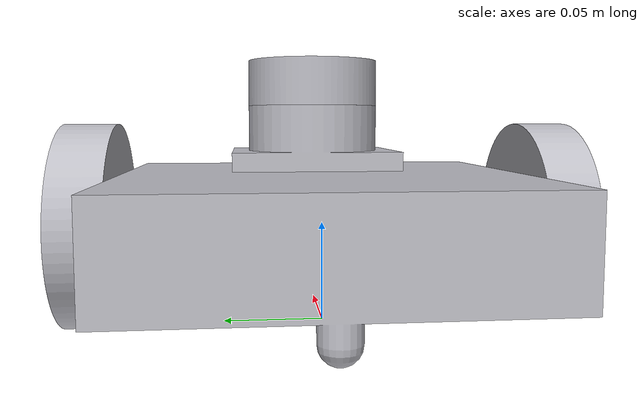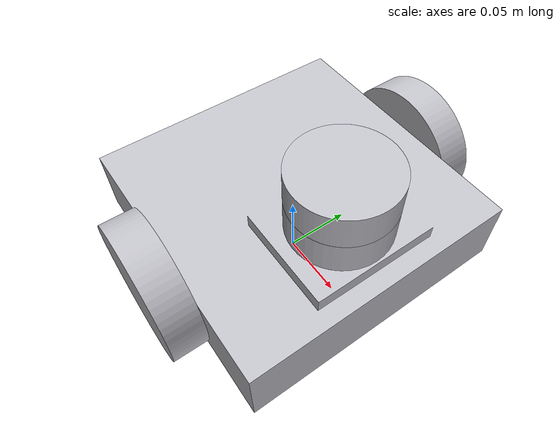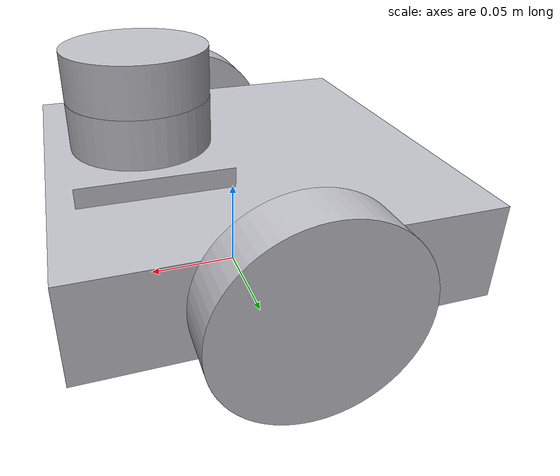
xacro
<?xml version="1.0" ?>
<robot name="myrobot" xmlns:xacro="http://www.ros.org/wiki/xacro">

<xacro:include filename="$(find myrobot_description)/urdf/materials.xacro" />
<xacro:include filename="$(find myrobot_description)/urdf/myrobot.trans" />
<xacro:include filename="$(find myrobot_description)/urdf/myrobot.gazebo" />
<link name="base_link">
  <inertial>
    <origin rpy="0 0 0" xyz="0.0038679374402001226 3.5649192997169336e-05 0.052918293473761"/>
    <mass value="2.3138752403503777"/>
    <inertia ixx="0.007906" ixy="-4e-06" ixz="-0.000337" iyy="0.008384" iyz="-3e-06" izz="0.014779"/>
  </inertial>
  <visual>
    <origin rpy="0 0 0" xyz="0 0 0"/>
    <geometry>
      <mesh filename="package://myrobot_description/meshes/base_link.stl" scale="0.001 0.001 0.001"/>
    </geometry>
    <material name="silver"/>
  </visual>
  <collision>
    <origin rpy="0 0 0" xyz="0 0 0"/>
    <geometry>
      <mesh filename="package://myrobot_description/meshes/base_link.stl" scale="0.001 0.001 0.001"/>
    </geometry>
  </collision>
</link>

<link name="rightwheel_1">
  <inertial>
    <origin rpy="0 0 0" xyz="-1.1580046200244058e-17 -0.012499999999999997 0.0"/>
    <mass value="0.1826050729899067"/>
    <inertia ixx="0.000124" ixy="-0.0" ixz="0.0" iyy="0.000228" iyz="0.0" izz="0.000124"/>
  </inertial>
  <visual>
    <origin rpy="0 0 0" xyz="-0.0 0.1 -0.05"/>
    <geometry>
      <mesh filename="package://myrobot_description/meshes/rightwheel_1.stl" scale="0.001 0.001 0.001"/>
    </geometry>
    <material name="silver"/>
  </visual>
  <collision>
    <origin rpy="0 0 0" xyz="-0.0 0.1 -0.05"/>
    <geometry>
      <mesh filename="package://myrobot_description/meshes/rightwheel_1.stl" scale="0.001 0.001 0.001"/>
    </geometry>
  </collision>
</link>

<link name="leftwheel_1">
  <inertial>
    <origin rpy="0 0 0" xyz="-1.1580046200244058e-17 0.012499999999999997 0.0"/>
    <mass value="0.1826050729899067"/>
    <inertia ixx="0.000124" ixy="-0.0" ixz="0.0" iyy="0.000228" iyz="-0.0" izz="0.000124"/>
  </inertial>
  <visual>
    <origin rpy="0 0 0" xyz="-0.0 -0.1 -0.05"/>
    <geometry>
      <mesh filename="package://myrobot_description/meshes/leftwheel_1.stl" scale="0.001 0.001 0.001"/>
    </geometry>
    <material name="silver"/>
  </visual>
  <collision>
    <origin rpy="0 0 0" xyz="-0.0 -0.1 -0.05"/>
    <geometry>
      <mesh filename="package://myrobot_description/meshes/leftwheel_1.stl" scale="0.001 0.001 0.001"/>
    </geometry>
  </collision>
</link>

<link name="lidar_1">
  <inertial>
    <origin rpy="0 0 0" xyz="-3.7375411832824e-07 -3.16808793696013e-07 0.012499999999999997"/>
    <mass value="0.10789485809488783"/>
    <inertia ixx="4.1e-05" ixy="-0.0" ixz="-0.0" iyy="4.1e-05" iyz="-0.0" izz="7e-05"/>
  </inertial>
  <visual>
    <origin rpy="0 0 0" xyz="-0.049876 -0.00046 -0.11"/>
    <geometry>
      <mesh filename="package://myrobot_description/meshes/lidar_1.stl" scale="0.001 0.001 0.001"/>
    </geometry>
    <material name="silver"/>
  </visual>
  <collision>
    <origin rpy="0 0 0" xyz="-0.049876 -0.00046 -0.11"/>
    <geometry>
      <mesh filename="package://myrobot_description/meshes/lidar_1.stl" scale="0.001 0.001 0.001"/>
    </geometry>
  </collision>
</link>

<joint name="Rev1" type="continuous">
  <origin rpy="0 0 0" xyz="0.0 -0.1 0.05"/>
  <parent link="base_link"/>
  <child link="rightwheel_1"/>
  <axis xyz="0.0 1.0 0.0"/>
</joint>

<joint name="Rev2" type="continuous">
  <origin rpy="0 0 0" xyz="0.0 0.1 0.05"/>
  <parent link="base_link"/>
  <child link="leftwheel_1"/>
  <axis xyz="0.0 1.0 0.0"/>
</joint>

<joint name="Rigid3" type="fixed">
  <origin rpy="0 0 0" xyz="0.049876 0.00046 0.11"/>
  <parent link="base_link"/>
  <child link="lidar_1"/>
</joint>

</robot>

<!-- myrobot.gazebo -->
<robot name="myrobot" xmlns:xacro="http://www.ros.org/wiki/xacro" >

<xacro:property name="body_color" value="Gazebo/Silver" />

<gazebo>
  <plugin filename="libgazebo_ros_control.so" name="control"/>
</gazebo>
<gazebo reference="base_link">
  <material>${body_color}</material>
  <mu1>0.1</mu1>
  <mu2>0.1</mu2>
  <selfCollide>true</selfCollide>
  <gravity>true</gravity>
</gazebo>

<gazebo reference="rightwheel_1">
  <material>${body_color}</material>
  <mu1>150</mu1>
  <mu2>150</mu2>
  <selfCollide>true</selfCollide>
</gazebo>

<gazebo reference="leftwheel_1">
  <material>${body_color}</material>
  <mu1>150</mu1>
  <mu2>150</mu2>
  <selfCollide>true</selfCollide>
</gazebo>

<gazebo reference="lidar_1">
  <material>${body_color}</material>
  <mu1>0.2</mu1>
  <mu2>0.2</mu2>
  <selfCollide>true</selfCollide>
</gazebo>
<gazebo>
  <plugin name="differential_drive_controller" filename="libgazebo_ros_diff_drive.so">

    <!-- Plugin update rate in Hz -->
    <updateRate>100</updateRate>

    <!-- Name of left joint, defaults to `left_joint` -->
    <leftJoint>Rev2</leftJoint>

    <!-- Name of right joint, defaults to `right_joint` -->
    <rightJoint>Rev1</rightJoint>

    <!-- The distance from the center of one wheel to the other, in meters, defaults to 0.34 m -->
    <wheelSeparation>0.2</wheelSeparation>

    <!-- Diameter of the wheels, in meters, defaults to 0.15 m -->
    <wheelDiameter>0.1</wheelDiameter>

    <!-- Wheel acceleration, in rad/s^2, defaults to 0.0 rad/s^2 -->
    <wheelAcceleration>1.0</wheelAcceleration>

    <!-- Maximum torque which the wheels can produce, in Nm, defaults to 5 Nm -->
    <wheelTorque>50</wheelTorque>

    <!-- Topic to receive geometry_msgs/Twist message commands, defaults to `cmd_vel` -->
    <commandTopic>cmd_vel</commandTopic>

    <!-- Topic to publish nav_msgs/Odometry messages, defaults to `odom` -->
    <odometryTopic>odom</odometryTopic>

    <!-- Odometry frame, defaults to `odom` -->
    <odometryFrame>odom</odometryFrame>

    <!-- Robot frame to calculate odometry from, defaults to `base_footprint` -->
    <robotBaseFrame>base_link</robotBaseFrame>

    <!-- Odometry source, 0 for ENCODER, 1 for WORLD, defaults to WORLD -->
    <odometrySource>1</odometrySource>

    <!-- Set to true to publish transforms for the wheel links, defaults to false -->
    <publishWheelTF>true</publishWheelTF>

    <!-- Set to true to publish transforms for the odometry, defaults to true -->
    <publishOdom>true</publishOdom>

    <!-- Set to true to publish sensor_msgs/JointState on /joint_states for the wheel joints, defaults to false -->
    <publishWheelJointState>true</publishWheelJointState>

    <!-- Set to true to swap right and left wheels, defaults to true -->
    <legacyMode>false</legacyMode>
  </plugin>
</gazebo>
</robot>
